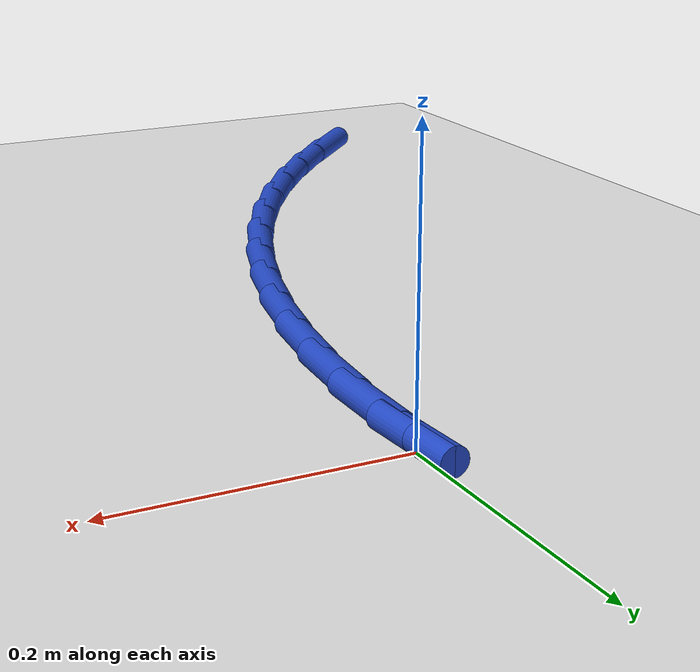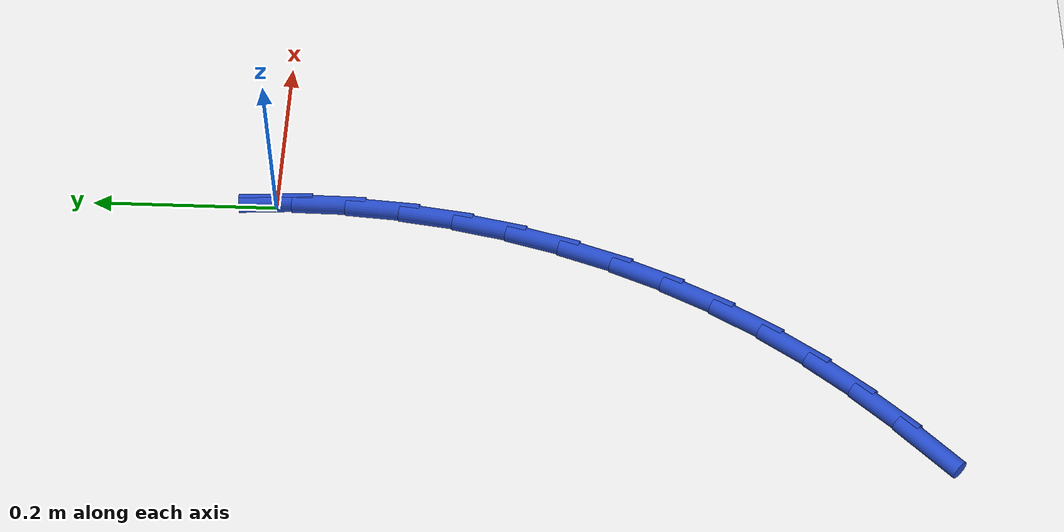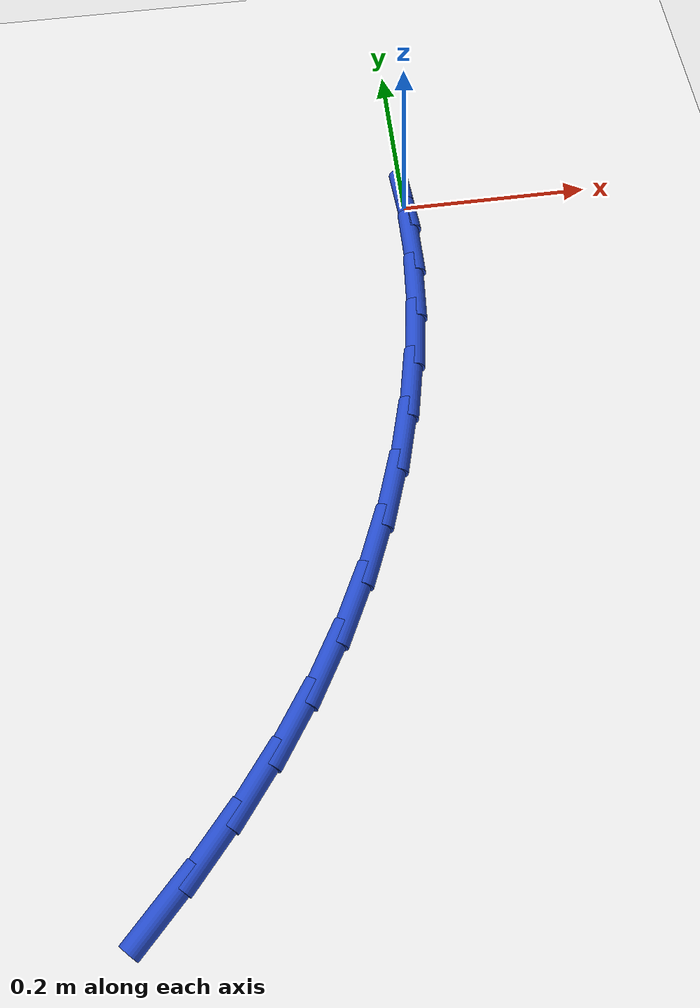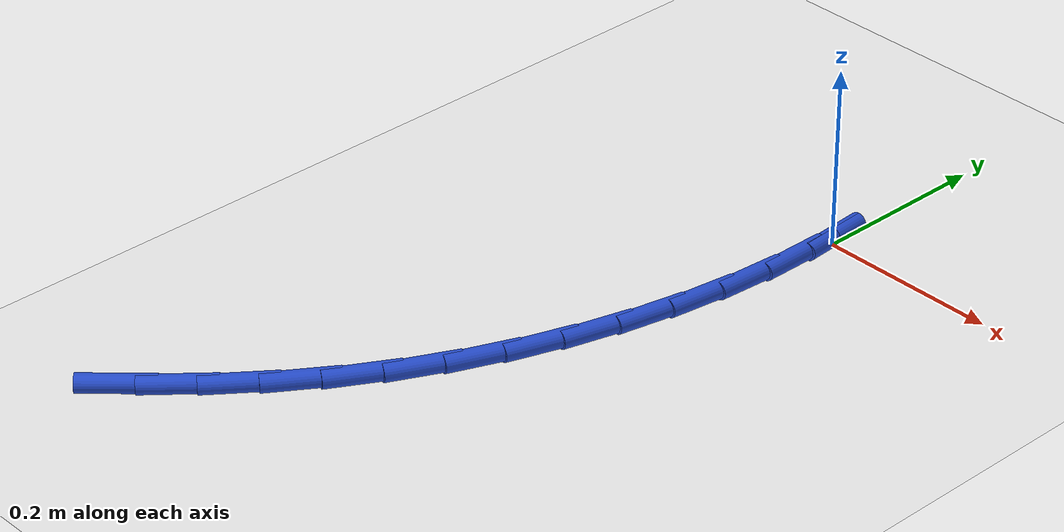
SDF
<sdf version="1.6">
 <world name="default">
  <model name="ground_plane">
   <static>1</static>
   <link name="link">
    <collision name="collision">
     <geometry><plane><normal>0 0 1</normal><size>100 100</size></plane></geometry>
     <surface><friction><ode><mu>100</mu><mu2>50</mu2></ode></friction></surface>
    </collision>
    <visual name="visual">
     <cast_shadows>0</cast_shadows>
     <geometry><plane><normal>0 0 1</normal><size>100 100</size></plane></geometry>
     <material>
      <script><uri>file://media/materials/scripts/gazebo.material</uri><name>Gazebo/WhiteGlow</name></script>
     </material>
    </visual>
   </link>
  </model>
  <model name="line">
   <link name="link_0">
    <pose>-1.734723475976807e-17 0.0 0.01 0 1.57 -1.512634758972333</pose>
    <collision name="collision">
     <geometry><cylinder><radius>0.01</radius><length>0.08</length></cylinder></geometry>
    </collision>
    <visual name="visual">
     <material>
      <script><name>Gazebo/Blue</name><uri>file://media/materials/scripts/gazebo.material</uri></script>
     </material>
     <geometry><cylinder><radius>0.01</radius><length>0.08</length></cylinder></geometry>
    </visual>
   </link>
   <link name="link_107">
    <pose>-0.2848060636989143 -0.6870563557384468 0.01 0 1.57 0.8030078679363778</pose>
    <collision name="collision">
     <geometry><cylinder><radius>0.01</radius><length>0.08</length></cylinder></geometry>
    </collision>
    <visual name="visual">
     <material>
      <script><name>Gazebo/Blue</name><uri>file://media/materials/scripts/gazebo.material</uri></script>
     </material>
     <geometry><cylinder><radius>0.01</radius><length>0.08</length></cylinder></geometry>
    </visual>
   </link>
   <link name="link_108">
    <pose>-0.2442967686603284 -0.6450946200783668 0.01 0 1.57 0.8554838029979724</pose>
    <collision name="collision">
     <geometry><cylinder><radius>0.01</radius><length>0.08</length></cylinder></geometry>
    </collision>
    <visual name="visual">
     <material>
      <script><name>Gazebo/Blue</name><uri>file://media/materials/scripts/gazebo.material</uri></script>
     </material>
     <geometry><cylinder><radius>0.01</radius><length>0.08</length></cylinder></geometry>
    </visual>
   </link>
   <link name="link_109">
    <pose>-0.20615438849759687 -0.6011926776870568 0.01 0 1.57 0.9142828839843279</pose>
    <collision name="collision">
     <geometry><cylinder><radius>0.01</radius><length>0.08</length></cylinder></geometry>
    </collision>
    <visual name="visual">
     <material>
      <script><name>Gazebo/Blue</name><uri>file://media/materials/scripts/gazebo.material</uri></script>
     </material>
     <geometry><cylinder><radius>0.01</radius><length>0.08</length></cylinder></geometry>
    </visual>
   </link>
   <link name="link_110">
    <pose>-0.17066134902115213 -0.5551297255399668 0.01 0 1.57 0.9790196225324707</pose>
    <collision name="collision">
     <geometry><cylinder><radius>0.01</radius><length>0.08</length></cylinder></geometry>
    </collision>
    <visual name="visual">
     <material>
      <script><name>Gazebo/Blue</name><uri>file://media/materials/scripts/gazebo.material</uri></script>
     </material>
     <geometry><cylinder><radius>0.01</radius><length>0.08</length></cylinder></geometry>
    </visual>
   </link>
   <link name="link_111">
    <pose>-0.13810007604142707 -0.5066849606125466 0.01 0 1.57 1.0481385510652688</pose>
    <collision name="collision">
     <geometry><cylinder><radius>0.01</radius><length>0.08</length></cylinder></geometry>
    </collision>
    <visual name="visual">
     <material>
      <script><name>Gazebo/Blue</name><uri>file://media/materials/scripts/gazebo.material</uri></script>
     </material>
     <geometry><cylinder><radius>0.01</radius><length>0.08</length></cylinder></geometry>
    </visual>
   </link>
   <link name="link_112">
    <pose>-0.10873102326133548 -0.4557055434281593 0.01 0 1.57 1.115915586423739</pose>
    <collision name="collision">
     <geometry><cylinder><radius>0.01</radius><length>0.08</length></cylinder></geometry>
    </collision>
    <visual name="visual">
     <material>
      <script><name>Gazebo/Blue</name><uri>file://media/materials/scripts/gazebo.material</uri></script>
     </material>
     <geometry><cylinder><radius>0.01</radius><length>0.08</length></cylinder></geometry>
    </visual>
   </link>
   <link name="link_113">
    <pose>-0.08268271624761189 -0.4024467111681101 0.01 0 1.57 1.181013387128961</pose>
    <collision name="collision">
     <geometry><cylinder><radius>0.01</radius><length>0.08</length></cylinder></geometry>
    </collision>
    <visual name="visual">
     <material>
      <script><name>Gazebo/Blue</name><uri>file://media/materials/scripts/gazebo.material</uri></script>
     </material>
     <geometry><cylinder><radius>0.01</radius><length>0.08</length></cylinder></geometry>
    </visual>
   </link>
   <link name="link_114">
    <pose>-0.06003466822603193 -0.347315304703978 0.01 0 1.57 1.244239562414222</pose>
    <collision name="collision">
     <geometry><cylinder><radius>0.01</radius><length>0.08</length></cylinder></geometry>
    </collision>
    <visual name="visual">
     <material>
      <script><name>Gazebo/Blue</name><uri>file://media/materials/scripts/gazebo.material</uri></script>
     </material>
     <geometry><cylinder><radius>0.01</radius><length>0.08</length></cylinder></geometry>
    </visual>
   </link>
   <link name="link_115">
    <pose>-0.04086631100138875 -0.29071841675659355 0.01 0 1.57 1.30640063809121</pose>
    <collision name="collision">
     <geometry><cylinder><radius>0.01</radius><length>0.08</length></cylinder></geometry>
    </collision>
    <visual name="visual">
     <material>
      <script><name>Gazebo/Blue</name><uri>file://media/materials/scripts/gazebo.material</uri></script>
     </material>
     <geometry><cylinder><radius>0.01</radius><length>0.08</length></cylinder></geometry>
    </visual>
   </link>
   <link name="link_116">
    <pose>-0.025257076378476313 -0.23306314004678955 0.01 0 1.57 1.3683042368764775</pose>
    <collision name="collision">
     <geometry><cylinder><radius>0.01</radius><length>0.08</length></cylinder></geometry>
    </collision>
    <visual name="visual">
     <material>
      <script><name>Gazebo/Blue</name><uri>file://media/materials/scripts/gazebo.material</uri></script>
     </material>
     <geometry><cylinder><radius>0.01</radius><length>0.08</length></cylinder></geometry>
    </visual>
   </link>
   <link name="link_117">
    <pose>-0.01328639616208778 -0.1747565672953969 0.01 0 1.57 1.4307694035646914</pose>
    <collision name="collision">
     <geometry><cylinder><radius>0.01</radius><length>0.08</length></cylinder></geometry>
    </collision>
    <visual name="visual">
     <material>
      <script><name>Gazebo/Blue</name><uri>file://media/materials/scripts/gazebo.material</uri></script>
     </material>
     <geometry><cylinder><radius>0.01</radius><length>0.08</length></cylinder></geometry>
    </visual>
   </link>
   <link name="link_118">
    <pose>-0.00503370215701659 -0.11620579122324688 0.01 0 1.57 1.4946391049515557</pose>
    <collision name="collision">
     <geometry><cylinder><radius>0.01</radius><length>0.08</length></cylinder></geometry>
    </collision>
    <visual name="visual">
     <material>
      <script><name>Gazebo/Blue</name><uri>file://media/materials/scripts/gazebo.material</uri></script>
     </material>
     <geometry><cylinder><radius>0.01</radius><length>0.08</length></cylinder></geometry>
    </visual>
   </link>
   <link name="link_119">
    <pose>-0.0005784261680561453 -0.057817904551170224 0.01 0 1.57 1.5607923863832323</pose>
    <collision name="collision">
     <geometry><cylinder><radius>0.01</radius><length>0.08</length></cylinder></geometry>
    </collision>
    <visual name="visual">
     <material>
      <script><name>Gazebo/Blue</name><uri>file://media/materials/scripts/gazebo.material</uri></script>
     </material>
     <geometry><cylinder><radius>0.01</radius><length>0.08</length></cylinder></geometry>
    </visual>
   </link>
   <link name="link_120">
    <pose>-2.0816681711721685e-17 9.71445146547012e-17 0.01 0 1.57 -1.511439565798957</pose>
    <collision name="collision">
     <geometry><cylinder><radius>0.01</radius><length>0.08</length></cylinder></geometry>
    </collision>
    <visual name="visual">
     <material>
      <script><name>Gazebo/Blue</name><uri>file://media/materials/scripts/gazebo.material</uri></script>
     </material>
     <geometry><cylinder><radius>0.01</radius><length>0.08</length></cylinder></geometry>
    </visual>
   </link>
  </model>
 </world>
</sdf>
